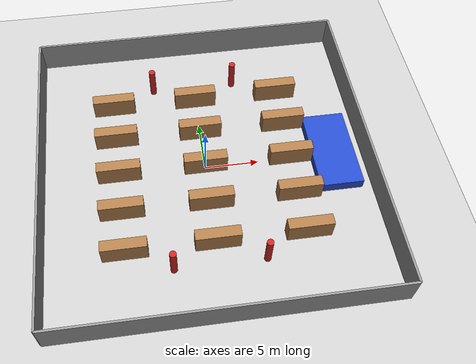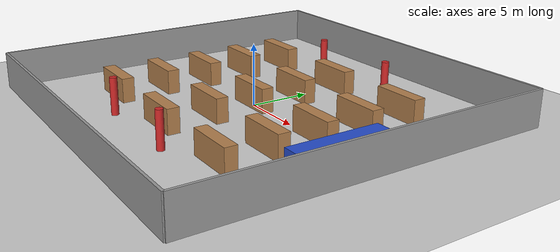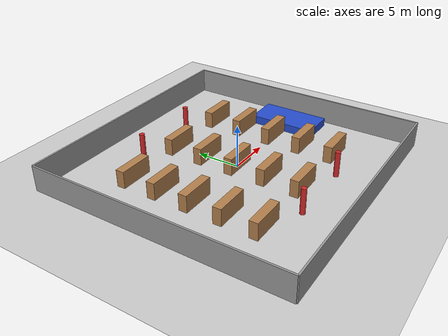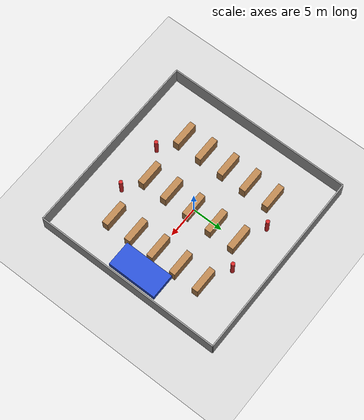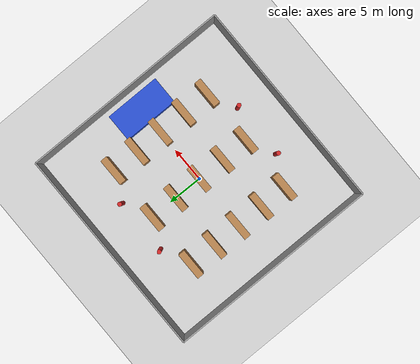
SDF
<?xml version="1.0" ?>
<sdf version="1.6">
  <world name="warehouse_with_obstacles">

    <!-- Physics settings -->
    <physics name="default_physics" default="0" type="ode">
      <max_step_size>0.001</max_step_size>
      <real_time_factor>1.0</real_time_factor>
      <real_time_update_rate>1000</real_time_update_rate>
    </physics>

    <!-- Scene settings -->
    <scene>
      <ambient>0.4 0.4 0.4 1</ambient>
      <background>0.7 0.7 0.7 1</background>
      <shadows>true</shadows>
    </scene>

    <!-- Sun light -->
    <include>
      <uri>model://sun</uri>
    </include>

    <!-- Ground plane -->
    <include>
      <uri>model://ground_plane</uri>
    </include>

    <!-- Warehouse walls -->
    <!-- North wall -->
    <model name="north_wall">
      <static>true</static>
      <link name="link">
        <pose>0 15 1.5 0 0 0</pose>
        <collision name="collision">
          <geometry>
            <box>
              <size>30 0.2 3</size>
            </box>
          </geometry>
        </collision>
        <visual name="visual">
          <geometry>
            <box>
              <size>30 0.2 3</size>
            </box>
          </geometry>
          <material>
            <script>
              <name>Gazebo/Grey</name>
            </script>
          </material>
        </visual>
      </link>
    </model>

    <!-- South wall -->
    <model name="south_wall">
      <static>true</static>
      <link name="link">
        <pose>0 -15 1.5 0 0 0</pose>
        <collision name="collision">
          <geometry>
            <box>
              <size>30 0.2 3</size>
            </box>
          </geometry>
        </collision>
        <visual name="visual">
          <geometry>
            <box>
              <size>30 0.2 3</size>
            </box>
          </geometry>
          <material>
            <script>
              <name>Gazebo/Grey</name>
            </script>
          </material>
        </visual>
      </link>
    </model>

    <!-- East wall -->
    <model name="east_wall">
      <static>true</static>
      <link name="link">
        <pose>15 0 1.5 0 0 0</pose>
        <collision name="collision">
          <geometry>
            <box>
              <size>0.2 30 3</size>
            </box>
          </geometry>
        </collision>
        <visual name="visual">
          <geometry>
            <box>
              <size>0.2 30 3</size>
            </box>
          </geometry>
          <material>
            <script>
              <name>Gazebo/Grey</name>
            </script>
          </material>
        </visual>
      </link>
    </model>

    <!-- West wall -->
    <model name="west_wall">
      <static>true</static>
      <link name="link">
        <pose>-15 0 1.5 0 0 0</pose>
        <collision name="collision">
          <geometry>
            <box>
              <size>0.2 30 3</size>
            </box>
          </geometry>
        </collision>
        <visual name="visual">
          <geometry>
            <box>
              <size>0.2 30 3</size>
            </box>
          </geometry>
          <material>
            <script>
              <name>Gazebo/Grey</name>
            </script>
          </material>
        </visual>
      </link>
    </model>

    <!-- Storage shelves - Row 1 -->
    <model name="shelf_1_1">
      <static>true</static>
      <link name="link">
        <pose>-8 -8 1 0 0 0</pose>
        <collision name="collision">
          <geometry>
            <box>
              <size>4 1 2</size>
            </box>
          </geometry>
        </collision>
        <visual name="visual">
          <geometry>
            <box>
              <size>4 1 2</size>
            </box>
          </geometry>
          <material>
            <script>
              <name>Gazebo/Wood</name>
            </script>
          </material>
        </visual>
      </link>
    </model>

    <model name="shelf_1_2">
      <static>true</static>
      <link name="link">
        <pose>-8 -4 1 0 0 0</pose>
        <collision name="collision">
          <geometry>
            <box>
              <size>4 1 2</size>
            </box>
          </geometry>
        </collision>
        <visual name="visual">
          <geometry>
            <box>
              <size>4 1 2</size>
            </box>
          </geometry>
          <material>
            <script>
              <name>Gazebo/Wood</name>
            </script>
          </material>
        </visual>
      </link>
    </model>

    <model name="shelf_1_3">
      <static>true</static>
      <link name="link">
        <pose>-8 0 1 0 0 0</pose>
        <collision name="collision">
          <geometry>
            <box>
              <size>4 1 2</size>
            </box>
          </geometry>
        </collision>
        <visual name="visual">
          <geometry>
            <box>
              <size>4 1 2</size>
            </box>
          </geometry>
          <material>
            <script>
              <name>Gazebo/Wood</name>
            </script>
          </material>
        </visual>
      </link>
    </model>

    <model name="shelf_1_4">
      <static>true</static>
      <link name="link">
        <pose>-8 4 1 0 0 0</pose>
        <collision name="collision">
          <geometry>
            <box>
              <size>4 1 2</size>
            </box>
          </geometry>
        </collision>
        <visual name="visual">
          <geometry>
            <box>
              <size>4 1 2</size>
            </box>
          </geometry>
          <material>
            <script>
              <name>Gazebo/Wood</name>
            </script>
          </material>
        </visual>
      </link>
    </model>

    <model name="shelf_1_5">
      <static>true</static>
      <link name="link">
        <pose>-8 8 1 0 0 0</pose>
        <collision name="collision">
          <geometry>
            <box>
              <size>4 1 2</size>
            </box>
          </geometry>
        </collision>
        <visual name="visual">
          <geometry>
            <box>
              <size>4 1 2</size>
            </box>
          </geometry>
          <material>
            <script>
              <name>Gazebo/Wood</name>
            </script>
          </material>
        </visual>
      </link>
    </model>

    <!-- Storage shelves - Row 2 -->
    <model name="shelf_2_1">
      <static>true</static>
      <link name="link">
        <pose>0 -8 1 0 0 0</pose>
        <collision name="collision">
          <geometry>
            <box>
              <size>4 1 2</size>
            </box>
          </geometry>
        </collision>
        <visual name="visual">
          <geometry>
            <box>
              <size>4 1 2</size>
            </box>
          </geometry>
          <material>
            <script>
              <name>Gazebo/Wood</name>
            </script>
          </material>
        </visual>
      </link>
    </model>

    <model name="shelf_2_2">
      <static>true</static>
      <link name="link">
        <pose>0 -4 1 0 0 0</pose>
        <collision name="collision">
          <geometry>
            <box>
              <size>4 1 2</size>
            </box>
          </geometry>
        </collision>
        <visual name="visual">
          <geometry>
            <box>
              <size>4 1 2</size>
            </box>
          </geometry>
          <material>
            <script>
              <name>Gazebo/Wood</name>
            </script>
          </material>
        </visual>
      </link>
    </model>

    <model name="shelf_2_3">
      <static>true</static>
      <link name="link">
        <pose>0 0 1 0 0 0</pose>
        <collision name="collision">
          <geometry>
            <box>
              <size>4 1 2</size>
            </box>
          </geometry>
        </collision>
        <visual name="visual">
          <geometry>
            <box>
              <size>4 1 2</size>
            </box>
          </geometry>
          <material>
            <script>
              <name>Gazebo/Wood</name>
            </script>
          </material>
        </visual>
      </link>
    </model>

    <model name="shelf_2_4">
      <static>true</static>
      <link name="link">
        <pose>0 4 1 0 0 0</pose>
        <collision name="collision">
          <geometry>
            <box>
              <size>4 1 2</size>
            </box>
          </geometry>
        </collision>
        <visual name="visual">
          <geometry>
            <box>
              <size>4 1 2</size>
            </box>
          </geometry>
          <material>
            <script>
              <name>Gazebo/Wood</name>
            </script>
          </material>
        </visual>
      </link>
    </model>

    <model name="shelf_2_5">
      <static>true</static>
      <link name="link">
        <pose>0 8 1 0 0 0</pose>
        <collision name="collision">
          <geometry>
            <box>
              <size>4 1 2</size>
            </box>
          </geometry>
        </collision>
        <visual name="visual">
          <geometry>
            <box>
              <size>4 1 2</size>
            </box>
          </geometry>
          <material>
            <script>
              <name>Gazebo/Wood</name>
            </script>
          </material>
        </visual>
      </link>
    </model>

    <!-- Storage shelves - Row 3 -->
    <model name="shelf_3_1">
      <static>true</static>
      <link name="link">
        <pose>8 -8 1 0 0 0</pose>
        <collision name="collision">
          <geometry>
            <box>
              <size>4 1 2</size>
            </box>
          </geometry>
        </collision>
        <visual name="visual">
          <geometry>
            <box>
              <size>4 1 2</size>
            </box>
          </geometry>
          <material>
            <script>
              <name>Gazebo/Wood</name>
            </script>
          </material>
        </visual>
      </link>
    </model>

    <model name="shelf_3_2">
      <static>true</static>
      <link name="link">
        <pose>8 -4 1 0 0 0</pose>
        <collision name="collision">
          <geometry>
            <box>
              <size>4 1 2</size>
            </box>
          </geometry>
        </collision>
        <visual name="visual">
          <geometry>
            <box>
              <size>4 1 2</size>
            </box>
          </geometry>
          <material>
            <script>
              <name>Gazebo/Wood</name>
            </script>
          </material>
        </visual>
      </link>
    </model>

    <model name="shelf_3_3">
      <static>true</static>
      <link name="link">
        <pose>8 0 1 0 0 0</pose>
        <collision name="collision">
          <geometry>
            <box>
              <size>4 1 2</size>
            </box>
          </geometry>
        </collision>
        <visual name="visual">
          <geometry>
            <box>
              <size>4 1 2</size>
            </box>
          </geometry>
          <material>
            <script>
              <name>Gazebo/Wood</name>
            </script>
          </material>
        </visual>
      </link>
    </model>

    <model name="shelf_3_4">
      <static>true</static>
      <link name="link">
        <pose>8 4 1 0 0 0</pose>
        <collision name="collision">
          <geometry>
            <box>
              <size>4 1 2</size>
            </box>
          </geometry>
        </collision>
        <visual name="visual">
          <geometry>
            <box>
              <size>4 1 2</size>
            </box>
          </geometry>
          <material>
            <script>
              <name>Gazebo/Wood</name>
            </script>
          </material>
        </visual>
      </link>
    </model>

    <model name="shelf_3_5">
      <static>true</static>
      <link name="link">
        <pose>8 8 1 0 0 0</pose>
        <collision name="collision">
          <geometry>
            <box>
              <size>4 1 2</size>
            </box>
          </geometry>
        </collision>
        <visual name="visual">
          <geometry>
            <box>
              <size>4 1 2</size>
            </box>
          </geometry>
          <material>
            <script>
              <name>Gazebo/Wood</name>
            </script>
          </material>
        </visual>
      </link>
    </model>

    <!-- Additional obstacles - Pillars -->
    <model name="pillar_1">
      <static>true</static>
      <link name="link">
        <pose>-4 -10 1.5 0 0 0</pose>
        <collision name="collision">
          <geometry>
            <cylinder>
              <radius>0.3</radius>
              <length>3</length>
            </cylinder>
          </geometry>
        </collision>
        <visual name="visual">
          <geometry>
            <cylinder>
              <radius>0.3</radius>
              <length>3</length>
            </cylinder>
          </geometry>
          <material>
            <script>
              <name>Gazebo/Red</name>
            </script>
          </material>
        </visual>
      </link>
    </model>

    <model name="pillar_2">
      <static>true</static>
      <link name="link">
        <pose>4 -10 1.5 0 0 0</pose>
        <collision name="collision">
          <geometry>
            <cylinder>
              <radius>0.3</radius>
              <length>3</length>
            </cylinder>
          </geometry>
        </collision>
        <visual name="visual">
          <geometry>
            <cylinder>
              <radius>0.3</radius>
              <length>3</length>
            </cylinder>
          </geometry>
          <material>
            <script>
              <name>Gazebo/Red</name>
            </script>
          </material>
        </visual>
      </link>
    </model>

    <model name="pillar_3">
      <static>true</static>
      <link name="link">
        <pose>-4 10 1.5 0 0 0</pose>
        <collision name="collision">
          <geometry>
            <cylinder>
              <radius>0.3</radius>
              <length>3</length>
            </cylinder>
          </geometry>
        </collision>
        <visual name="visual">
          <geometry>
            <cylinder>
              <radius>0.3</radius>
              <length>3</length>
            </cylinder>
          </geometry>
          <material>
            <script>
              <name>Gazebo/Red</name>
            </script>
          </material>
        </visual>
      </link>
    </model>

    <model name="pillar_4">
      <static>true</static>
      <link name="link">
        <pose>4 10 1.5 0 0 0</pose>
        <collision name="collision">
          <geometry>
            <cylinder>
              <radius>0.3</radius>
              <length>3</length>
            </cylinder>
          </geometry>
        </collision>
        <visual name="visual">
          <geometry>
            <cylinder>
              <radius>0.3</radius>
              <length>3</length>
            </cylinder>
          </geometry>
          <material>
            <script>
              <name>Gazebo/Red</name>
            </script>
          </material>
        </visual>
      </link>
    </model>

    <!-- Loading dock area -->
    <model name="loading_dock">
      <static>true</static>
      <link name="link">
        <pose>12 0 0.5 0 0 0</pose>
        <collision name="collision">
          <geometry>
            <box>
              <size>4 8 1</size>
            </box>
          </geometry>
        </collision>
        <visual name="visual">
          <geometry>
            <box>
              <size>4 8 1</size>
            </box>
          </geometry>
          <material>
            <script>
              <name>Gazebo/Blue</name>
            </script>
          </material>
        </visual>
      </link>
    </model>

  </world>
</sdf>
